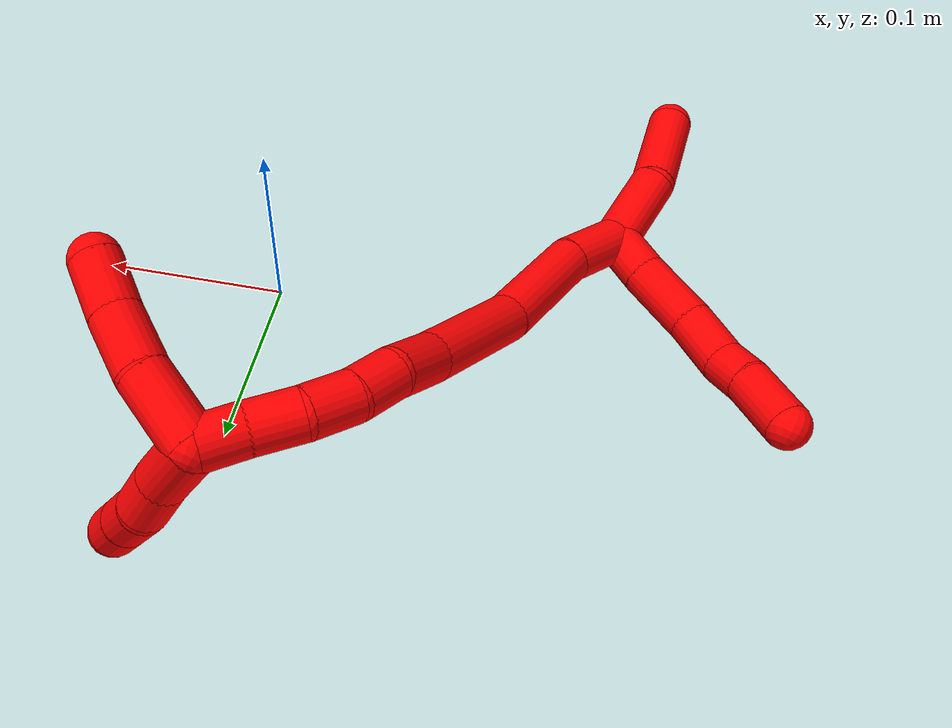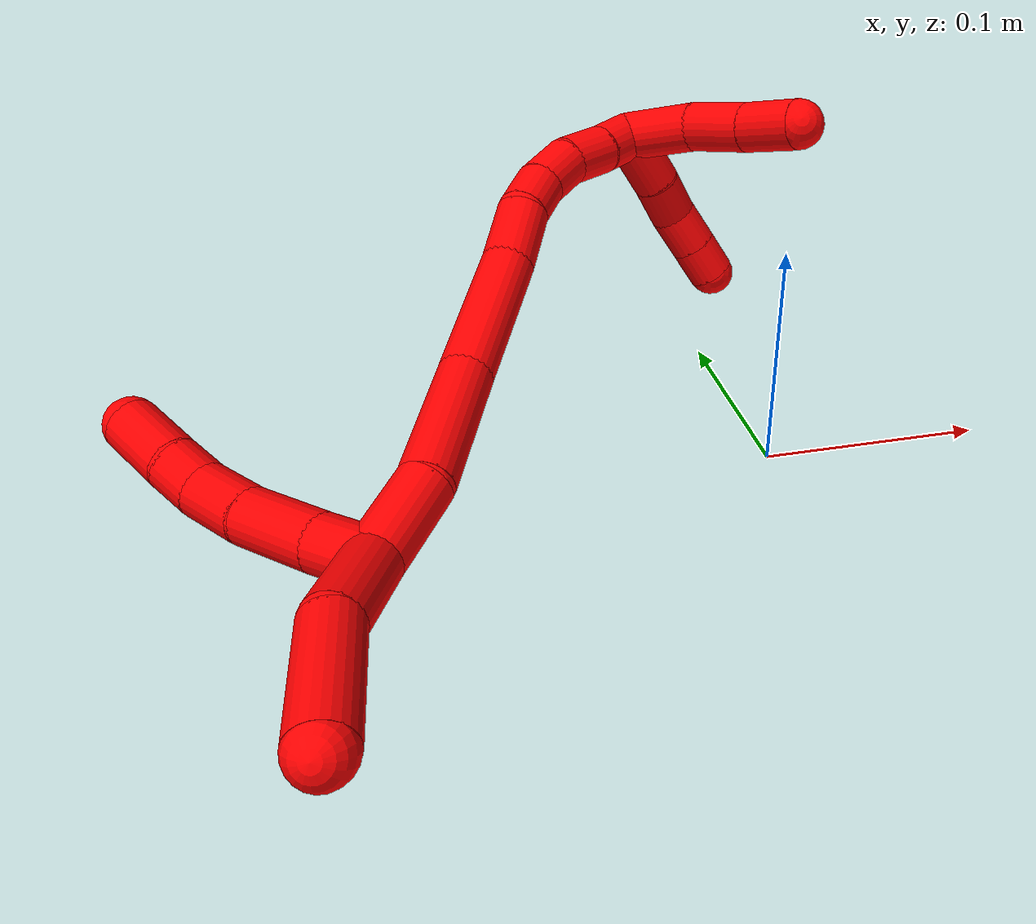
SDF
<sdf version="1.7">
 <world name="default">
  <model name="2">
   <static>0</static>
   <link name="2">
    <collision name="collision-cylinder-e_1_2_8">
     <pose>-0.011702 0.001691 -0.006817 -2.89848 -1.03025 2.71654</pose>
     <geometry><cylinder><radius>0.0125</radius><length>0.027296</length></cylinder></geometry>
     <surface>
      <friction><ode><mu>1.16</mu><mu2>1.16</mu2><slip1>0</slip1><slip2>0</slip2></ode></friction>
      <contact><ode><kp>1e+06</kp><kd>1</kd><max_vel>0</max_vel><min_depth>0.001</min_depth></ode></contact>
     </surface>
    </collision>
    <visual name="visual-cylinder-e_1_2_8">
     <pose>-0.011702 0.001691 -0.006817 -2.89848 -1.03025 2.71654</pose>
     <geometry><cylinder><radius>0.0125</radius><length>0.027296</length></cylinder></geometry>
     <material><ambient>1 0 0 1</ambient></material>
    </visual>
    <collision name="collision-cylinder-e_2_8_9">
     <pose>-0.040502 0.006845 -0.02221 -2.75772 -1.07491 2.5112</pose>
     <geometry><cylinder><radius>0.0125</radius><length>0.038878</length></cylinder></geometry>
     <surface>
      <friction><ode><mu>1.16</mu><mu2>1.16</mu2><slip1>0</slip1><slip2>0</slip2></ode></friction>
      <contact><ode><kp>1e+06</kp><kd>1</kd><max_vel>0</max_vel><min_depth>0.001</min_depth></ode></contact>
     </surface>
    </collision>
    <visual name="visual-cylinder-e_2_8_9">
     <pose>-0.040502 0.006845 -0.02221 -2.75772 -1.07491 2.5112</pose>
     <geometry><cylinder><radius>0.0125</radius><length>0.038878</length></cylinder></geometry>
     <material><ambient>1 0 0 1</ambient></material>
    </visual>
    <collision name="collision-cylinder-e_3_9_10">
     <pose>-0.070009 0.014368 -0.038458 -2.65505 -0.960464 2.25233</pose>
     <geometry><cylinder><radius>0.0125</radius><length>0.030287</length></cylinder></geometry>
     <surface>
      <friction><ode><mu>1.16</mu><mu2>1.16</mu2><slip1>0</slip1><slip2>0</slip2></ode></friction>
      <contact><ode><kp>1e+06</kp><kd>1</kd><max_vel>0</max_vel><min_depth>0.001</min_depth></ode></contact>
     </surface>
    </collision>
    <visual name="visual-cylinder-e_3_9_10">
     <pose>-0.070009 0.014368 -0.038458 -2.65505 -0.960464 2.25233</pose>
     <geometry><cylinder><radius>0.0125</radius><length>0.030287</length></cylinder></geometry>
     <material><ambient>1 0 0 1</ambient></material>
    </visual>
    <collision name="collision-cylinder-e_4_10_11">
     <pose>-0.090526 0.023325 -0.049443 -2.16534 -0.940587 1.52723</pose>
     <geometry><cylinder><radius>0.0125</radius><length>0.02007</length></cylinder></geometry>
     <surface>
      <friction><ode><mu>1.16</mu><mu2>1.16</mu2><slip1>0</slip1><slip2>0</slip2></ode></friction>
      <contact><ode><kp>1e+06</kp><kd>1</kd><max_vel>0</max_vel><min_depth>0.001</min_depth></ode></contact>
     </surface>
    </collision>
    <visual name="visual-cylinder-e_4_10_11">
     <pose>-0.090526 0.023325 -0.049443 -2.16534 -0.940587 1.52723</pose>
     <geometry><cylinder><radius>0.0125</radius><length>0.02007</length></cylinder></geometry>
     <material><ambient>1 0 0 1</ambient></material>
    </visual>
    <collision name="collision-cylinder-e_5_11_6">
     <pose>-0.111488 0.035646 -0.060482 -2.37629 -0.87597 1.7217</pose>
     <geometry><cylinder><radius>0.0125</radius><length>0.033468</length></cylinder></geometry>
     <surface>
      <friction><ode><mu>1.16</mu><mu2>1.16</mu2><slip1>0</slip1><slip2>0</slip2></ode></friction>
      <contact><ode><kp>1e+06</kp><kd>1</kd><max_vel>0</max_vel><min_depth>0.001</min_depth></ode></contact>
     </surface>
    </collision>
    <visual name="visual-cylinder-e_5_11_6">
     <pose>-0.111488 0.035646 -0.060482 -2.37629 -0.87597 1.7217</pose>
     <geometry><cylinder><radius>0.0125</radius><length>0.033468</length></cylinder></geometry>
     <material><ambient>1 0 0 1</ambient></material>
    </visual>
    <collision name="collision-cylinder-e_1_2_12">
     <pose>-0.001738 -0.007499 0.021275 0.338895 -0.076905 -0.013164</pose>
     <geometry><cylinder><radius>0.0125</radius><length>0.045249</length></cylinder></geometry>
     <surface>
      <friction><ode><mu>1.16</mu><mu2>1.16</mu2><slip1>0</slip1><slip2>0</slip2></ode></friction>
      <contact><ode><kp>1e+06</kp><kd>1</kd><max_vel>0</max_vel><min_depth>0.001</min_depth></ode></contact>
     </surface>
    </collision>
    <visual name="visual-cylinder-e_1_2_12">
     <pose>-0.001738 -0.007499 0.021275 0.338895 -0.076905 -0.013164</pose>
     <geometry><cylinder><radius>0.0125</radius><length>0.045249</length></cylinder></geometry>
     <material><ambient>1 0 0 1</ambient></material>
    </visual>
    <collision name="collision-cylinder-e_2_12_5">
     <pose>0.001753 -0.028732 0.065646 0.536439 0.192218 0.05298</pose>
     <geometry><cylinder><radius>0.0125</radius><length>0.054751</length></cylinder></geometry>
     <surface>
      <friction><ode><mu>1.16</mu><mu2>1.16</mu2><slip1>0</slip1><slip2>0</slip2></ode></friction>
      <contact><ode><kp>1e+06</kp><kd>1</kd><max_vel>0</max_vel><min_depth>0.001</min_depth></ode></contact>
     </surface>
    </collision>
    <visual name="visual-cylinder-e_2_12_5">
     <pose>0.001753 -0.028732 0.065646 0.536439 0.192218 0.05298</pose>
     <geometry><cylinder><radius>0.0125</radius><length>0.054751</length></cylinder></geometry>
     <material><ambient>1 0 0 1</ambient></material>
    </visual>
    <collision name="collision-cylinder-e_1_2_13">
     <pose>0.006765 0.013517 -0.013244 -2.346 0.343323 -0.782615</pose>
     <geometry><cylinder><radius>0.0125</radius><length>0.040193</length></cylinder></geometry>
     <surface>
      <friction><ode><mu>1.16</mu><mu2>1.16</mu2><slip1>0</slip1><slip2>0</slip2></ode></friction>
      <contact><ode><kp>1e+06</kp><kd>1</kd><max_vel>0</max_vel><min_depth>0.001</min_depth></ode></contact>
     </surface>
    </collision>
    <visual name="visual-cylinder-e_1_2_13">
     <pose>0.006765 0.013517 -0.013244 -2.346 0.343323 -0.782615</pose>
     <geometry><cylinder><radius>0.0125</radius><length>0.040193</length></cylinder></geometry>
     <material><ambient>1 0 0 1</ambient></material>
    </visual>
    <collision name="collision-cylinder-e_2_13_14">
     <pose>0.016855 0.048824 -0.05072 -2.40918 0.101679 -0.26382</pose>
     <geometry><cylinder><radius>0.0125</radius><length>0.065516</length></cylinder></geometry>
     <surface>
      <friction><ode><mu>1.16</mu><mu2>1.16</mu2><slip1>0</slip1><slip2>0</slip2></ode></friction>
      <contact><ode><kp>1e+06</kp><kd>1</kd><max_vel>0</max_vel><min_depth>0.001</min_depth></ode></contact>
     </surface>
    </collision>
    <visual name="visual-cylinder-e_2_13_14">
     <pose>0.016855 0.048824 -0.05072 -2.40918 0.101679 -0.26382</pose>
     <geometry><cylinder><radius>0.0125</radius><length>0.065516</length></cylinder></geometry>
     <material><ambient>1 0 0 1</ambient></material>
    </visual>
    <collision name="collision-cylinder-e_3_14_15">
     <pose>0.026042 0.097023 -0.094361 -2.20463 0.176987 -0.347126</pose>
     <geometry><cylinder><radius>0.0125</radius><length>0.066587</length></cylinder></geometry>
     <surface>
      <friction><ode><mu>1.16</mu><mu2>1.16</mu2><slip1>0</slip1><slip2>0</slip2></ode></friction>
      <contact><ode><kp>1e+06</kp><kd>1</kd><max_vel>0</max_vel><min_depth>0.001</min_depth></ode></contact>
     </surface>
    </collision>
    <visual name="visual-cylinder-e_3_14_15">
     <pose>0.026042 0.097023 -0.094361 -2.20463 0.176987 -0.347126</pose>
     <geometry><cylinder><radius>0.0125</radius><length>0.066587</length></cylinder></geometry>
     <material><ambient>1 0 0 1</ambient></material>
    </visual>
    <collision name="collision-cylinder-e_4_15_16">
     <pose>0.034148 0.136845 -0.121315 -2.08311 0.14484 -0.246807</pose>
     <geometry><cylinder><radius>0.0125</radius><length>0.031107</length></cylinder></geometry>
     <surface>
      <friction><ode><mu>1.16</mu><mu2>1.16</mu2><slip1>0</slip1><slip2>0</slip2></ode></friction>
      <contact><ode><kp>1e+06</kp><kd>1</kd><max_vel>0</max_vel><min_depth>0.001</min_depth></ode></contact>
     </surface>
    </collision>
    <visual name="visual-cylinder-e_4_15_16">
     <pose>0.034148 0.136845 -0.121315 -2.08311 0.14484 -0.246807</pose>
     <geometry><cylinder><radius>0.0125</radius><length>0.031107</length></cylinder></geometry>
     <material><ambient>1 0 0 1</ambient></material>
    </visual>
    <collision name="collision-cylinder-e_5_16_17">
     <pose>0.039423 0.158351 -0.137137 -2.36756 0.255988 -0.611715</pose>
     <geometry><cylinder><radius>0.0125</radius><length>0.023931</length></cylinder></geometry>
     <surface>
      <friction><ode><mu>1.16</mu><mu2>1.16</mu2><slip1>0</slip1><slip2>0</slip2></ode></friction>
      <contact><ode><kp>1e+06</kp><kd>1</kd><max_vel>0</max_vel><min_depth>0.001</min_depth></ode></contact>
     </surface>
    </collision>
    <visual name="visual-cylinder-e_5_16_17">
     <pose>0.039423 0.158351 -0.137137 -2.36756 0.255988 -0.611715</pose>
     <geometry><cylinder><radius>0.0125</radius><length>0.023931</length></cylinder></geometry>
     <material><ambient>1 0 0 1</ambient></material>
    </visual>
    <collision name="collision-cylinder-e_6_17_18">
     <pose>0.048279 0.174097 -0.153442 -2.37996 0.483675 -1.10436</pose>
     <geometry><cylinder><radius>0.0125</radius><length>0.025059</length></cylinder></geometry>
     <surface>
      <friction><ode><mu>1.16</mu><mu2>1.16</mu2><slip1>0</slip1><slip2>0</slip2></ode></friction>
      <contact><ode><kp>1e+06</kp><kd>1</kd><max_vel>0</max_vel><min_depth>0.001</min_depth></ode></contact>
     </surface>
    </collision>
    <visual name="visual-cylinder-e_6_17_18">
     <pose>0.048279 0.174097 -0.153442 -2.37996 0.483675 -1.10436</pose>
     <geometry><cylinder><radius>0.0125</radius><length>0.025059</length></cylinder></geometry>
     <material><ambient>1 0 0 1</ambient></material>
    </visual>
    <collision name="collision-cylinder-e_7_18_19">
     <pose>0.062404 0.186703 -0.169388 -2.5828 0.726423 -1.84838</pose>
     <geometry><cylinder><radius>0.0125</radius><length>0.024986</length></cylinder></geometry>
     <surface>
      <friction><ode><mu>1.16</mu><mu2>1.16</mu2><slip1>0</slip1><slip2>0</slip2></ode></friction>
      <contact><ode><kp>1e+06</kp><kd>1</kd><max_vel>0</max_vel><min_depth>0.001</min_depth></ode></contact>
     </surface>
    </collision>
    <visual name="visual-cylinder-e_7_18_19">
     <pose>0.062404 0.186703 -0.169388 -2.5828 0.726423 -1.84838</pose>
     <geometry><cylinder><radius>0.0125</radius><length>0.024986</length></cylinder></geometry>
     <material><ambient>1 0 0 1</ambient></material>
    </visual>
    <collision name="collision-cylinder-e_8_19_1">
     <pose>0.077456 0.196899 -0.184711 -2.5253 0.639926 -1.61101</pose>
     <geometry><cylinder><radius>0.0125</radius><length>0.022622</length></cylinder></geometry>
     <surface>
      <friction><ode><mu>1.16</mu><mu2>1.16</mu2><slip1>0</slip1><slip2>0</slip2></ode></friction>
      <contact><ode><kp>1e+06</kp><kd>1</kd><max_vel>0</max_vel><min_depth>0.001</min_depth></ode></contact>
     </surface>
    </collision>
    <visual name="visual-cylinder-e_8_19_1">
     <pose>0.077456 0.196899 -0.184711 -2.5253 0.639926 -1.61101</pose>
     <geometry><cylinder><radius>0.0125</radius><length>0.022622</length></cylinder></geometry>
     <material><ambient>1 0 0 1</ambient></material>
    </visual>
    <collision name="collision-cylinder-e_1_1_20">
     <pose>0.092101 0.191994 -0.202017 2.34386 0.507822 1.10384</pose>
     <geometry><cylinder><radius>0.0125</radius><length>0.032455</length></cylinder></geometry>
     <surface>
      <friction><ode><mu>1.16</mu><mu2>1.16</mu2><slip1>0</slip1><slip2>0</slip2></ode></friction>
      <contact><ode><kp>1e+06</kp><kd>1</kd><max_vel>0</max_vel><min_depth>0.001</min_depth></ode></contact>
     </surface>
    </collision>
    <visual name="visual-cylinder-e_1_1_20">
     <pose>0.092101 0.191994 -0.202017 2.34386 0.507822 1.10384</pose>
     <geometry><cylinder><radius>0.0125</radius><length>0.032455</length></cylinder></geometry>
     <material><ambient>1 0 0 1</ambient></material>
    </visual>
    <collision name="collision-cylinder-e_2_20_21">
     <pose>0.104938 0.17453 -0.220055 2.40934 0.424549 1.02419</pose>
     <geometry><cylinder><radius>0.0125</radius><length>0.024014</length></cylinder></geometry>
     <surface>
      <friction><ode><mu>1.16</mu><mu2>1.16</mu2><slip1>0</slip1><slip2>0</slip2></ode></friction>
      <contact><ode><kp>1e+06</kp><kd>1</kd><max_vel>0</max_vel><min_depth>0.001</min_depth></ode></contact>
     </surface>
    </collision>
    <visual name="visual-cylinder-e_2_20_21">
     <pose>0.104938 0.17453 -0.220055 2.40934 0.424549 1.02419</pose>
     <geometry><cylinder><radius>0.0125</radius><length>0.024014</length></cylinder></geometry>
     <material><ambient>1 0 0 1</ambient></material>
    </visual>
    <collision name="collision-cylinder-e_3_21_22">
     <pose>0.116135 0.159185 -0.233433 2.14908 0.577744 1.00395</pose>
     <geometry><cylinder><radius>0.0125</radius><length>0.022895</length></cylinder></geometry>
     <surface>
      <friction><ode><mu>1.16</mu><mu2>1.16</mu2><slip1>0</slip1><slip2>0</slip2></ode></friction>
      <contact><ode><kp>1e+06</kp><kd>1</kd><max_vel>0</max_vel><min_depth>0.001</min_depth></ode></contact>
     </surface>
    </collision>
    <visual name="visual-cylinder-e_3_21_22">
     <pose>0.116135 0.159185 -0.233433 2.14908 0.577744 1.00395</pose>
     <geometry><cylinder><radius>0.0125</radius><length>0.022895</length></cylinder></geometry>
     <material><ambient>1 0 0 1</ambient></material>
    </visual>
    <collision name="collision-cylinder-e_4_22_4">
     <pose>0.128012 0.143802 -0.243231 2.12559 0.576577 0.978861</pose>
     <geometry><cylinder><radius>0.0125</radius><length>0.020636</length></cylinder></geometry>
     <surface>
      <friction><ode><mu>1.16</mu><mu2>1.16</mu2><slip1>0</slip1><slip2>0</slip2></ode></friction>
      <contact><ode><kp>1e+06</kp><kd>1</kd><max_vel>0</max_vel><min_depth>0.001</min_depth></ode></contact>
     </surface>
    </collision>
    <visual name="visual-cylinder-e_4_22_4">
     <pose>0.128012 0.143802 -0.243231 2.12559 0.576577 0.978861</pose>
     <geometry><cylinder><radius>0.0125</radius><length>0.020636</length></cylinder></geometry>
     <material><ambient>1 0 0 1</ambient></material>
    </visual>
    <collision name="collision-cylinder-e_1_1_23">
     <pose>0.101415 0.203148 -0.183108 -0.111019 1.08597 -0.067043</pose>
     <geometry><cylinder><radius>0.0125</radius><length>0.038891</length></cylinder></geometry>
     <surface>
      <friction><ode><mu>1.16</mu><mu2>1.16</mu2><slip1>0</slip1><slip2>0</slip2></ode></friction>
      <contact><ode><kp>1e+06</kp><kd>1</kd><max_vel>0</max_vel><min_depth>0.001</min_depth></ode></contact>
     </surface>
    </collision>
    <visual name="visual-cylinder-e_1_1_23">
     <pose>0.101415 0.203148 -0.183108 -0.111019 1.08597 -0.067043</pose>
     <geometry><cylinder><radius>0.0125</radius><length>0.038891</length></cylinder></geometry>
     <material><ambient>1 0 0 1</ambient></material>
    </visual>
    <collision name="collision-cylinder-e_2_23_24">
     <pose>0.131646 0.202417 -0.165447 0.197891 0.975301 0.105203</pose>
     <geometry><cylinder><radius>0.0125</radius><length>0.03147</length></cylinder></geometry>
     <surface>
      <friction><ode><mu>1.16</mu><mu2>1.16</mu2><slip1>0</slip1><slip2>0</slip2></ode></friction>
      <contact><ode><kp>1e+06</kp><kd>1</kd><max_vel>0</max_vel><min_depth>0.001</min_depth></ode></contact>
     </surface>
    </collision>
    <visual name="visual-cylinder-e_2_23_24">
     <pose>0.131646 0.202417 -0.165447 0.197891 0.975301 0.105203</pose>
     <geometry><cylinder><radius>0.0125</radius><length>0.03147</length></cylinder></geometry>
     <material><ambient>1 0 0 1</ambient></material>
    </visual>
    <collision name="collision-cylinder-e_3_24_3">
     <pose>0.156211 0.199681 -0.147549 0.107809 0.892522 0.05162</pose>
     <geometry><cylinder><radius>0.0125</radius><length>0.029639</length></cylinder></geometry>
     <surface>
      <friction><ode><mu>1.16</mu><mu2>1.16</mu2><slip1>0</slip1><slip2>0</slip2></ode></friction>
      <contact><ode><kp>1e+06</kp><kd>1</kd><max_vel>0</max_vel><min_depth>0.001</min_depth></ode></contact>
     </surface>
    </collision>
    <visual name="visual-cylinder-e_3_24_3">
     <pose>0.156211 0.199681 -0.147549 0.107809 0.892522 0.05162</pose>
     <geometry><cylinder><radius>0.0125</radius><length>0.029639</length></cylinder></geometry>
     <material><ambient>1 0 0 1</ambient></material>
    </visual>
    <collision name="collision-sphere-3">
     <pose>0.167751 0.19868 -0.138304 0 -0 0</pose>
     <geometry><sphere><radius>0.0125</radius></sphere></geometry>
     <surface>
      <friction><ode><mu>1.16</mu><mu2>1.16</mu2><slip1>0</slip1><slip2>0</slip2></ode></friction>
      <contact><ode><kp>1e+06</kp><kd>1</kd><max_vel>0</max_vel><min_depth>0.001</min_depth></ode></contact>
     </surface>
    </collision>
    <visual name="visual-sphere-3">
     <pose>0.167751 0.19868 -0.138304 0 -0 0</pose>
     <geometry><sphere><radius>0.0125</radius></sphere></geometry>
     <material><ambient>1 0 0 1</ambient></material>
    </visual>
    <collision name="collision-sphere-24">
     <pose>0.144672 0.200681 -0.156793 0 -0 0</pose>
     <geometry><sphere><radius>0.0125</radius></sphere></geometry>
     <surface>
      <friction><ode><mu>1.16</mu><mu2>1.16</mu2><slip1>0</slip1><slip2>0</slip2></ode></friction>
      <contact><ode><kp>1e+06</kp><kd>1</kd><max_vel>0</max_vel><min_depth>0.001</min_depth></ode></contact>
     </surface>
    </collision>
    <visual name="visual-sphere-24">
     <pose>0.144672 0.200681 -0.156793 0 -0 0</pose>
     <geometry><sphere><radius>0.0125</radius></sphere></geometry>
     <material><ambient>1 0 0 1</ambient></material>
    </visual>
    <collision name="collision-sphere-23">
     <pose>0.118619 0.204152 -0.174101 0 -0 0</pose>
     <geometry><sphere><radius>0.0125</radius></sphere></geometry>
     <surface>
      <friction><ode><mu>1.16</mu><mu2>1.16</mu2><slip1>0</slip1><slip2>0</slip2></ode></friction>
      <contact><ode><kp>1e+06</kp><kd>1</kd><max_vel>0</max_vel><min_depth>0.001</min_depth></ode></contact>
     </surface>
    </collision>
    <visual name="visual-sphere-23">
     <pose>0.118619 0.204152 -0.174101 0 -0 0</pose>
     <geometry><sphere><radius>0.0125</radius></sphere></geometry>
     <material><ambient>1 0 0 1</ambient></material>
    </visual>
    <collision name="collision-sphere-4">
     <pose>0.133637 0.13645 -0.247788 0 -0 0</pose>
     <geometry><sphere><radius>0.0125</radius></sphere></geometry>
     <surface>
      <friction><ode><mu>1.16</mu><mu2>1.16</mu2><slip1>0</slip1><slip2>0</slip2></ode></friction>
      <contact><ode><kp>1e+06</kp><kd>1</kd><max_vel>0</max_vel><min_depth>0.001</min_depth></ode></contact>
     </surface>
    </collision>
    <visual name="visual-sphere-4">
     <pose>0.133637 0.13645 -0.247788 0 -0 0</pose>
     <geometry><sphere><radius>0.0125</radius></sphere></geometry>
     <material><ambient>1 0 0 1</ambient></material>
    </visual>
    <collision name="collision-sphere-22">
     <pose>0.122387 0.151155 -0.238675 0 -0 0</pose>
     <geometry><sphere><radius>0.0125</radius></sphere></geometry>
     <surface>
      <friction><ode><mu>1.16</mu><mu2>1.16</mu2><slip1>0</slip1><slip2>0</slip2></ode></friction>
      <contact><ode><kp>1e+06</kp><kd>1</kd><max_vel>0</max_vel><min_depth>0.001</min_depth></ode></contact>
     </surface>
    </collision>
    <visual name="visual-sphere-22">
     <pose>0.122387 0.151155 -0.238675 0 -0 0</pose>
     <geometry><sphere><radius>0.0125</radius></sphere></geometry>
     <material><ambient>1 0 0 1</ambient></material>
    </visual>
    <collision name="collision-sphere-21">
     <pose>0.109883 0.167216 -0.228192 0 -0 0</pose>
     <geometry><sphere><radius>0.0125</radius></sphere></geometry>
     <surface>
      <friction><ode><mu>1.16</mu><mu2>1.16</mu2><slip1>0</slip1><slip2>0</slip2></ode></friction>
      <contact><ode><kp>1e+06</kp><kd>1</kd><max_vel>0</max_vel><min_depth>0.001</min_depth></ode></contact>
     </surface>
    </collision>
    <visual name="visual-sphere-21">
     <pose>0.109883 0.167216 -0.228192 0 -0 0</pose>
     <geometry><sphere><radius>0.0125</radius></sphere></geometry>
     <material><ambient>1 0 0 1</ambient></material>
    </visual>
    <collision name="collision-sphere-20">
     <pose>0.099992 0.181845 -0.211919 0 -0 0</pose>
     <geometry><sphere><radius>0.0125</radius></sphere></geometry>
     <surface>
      <friction><ode><mu>1.16</mu><mu2>1.16</mu2><slip1>0</slip1><slip2>0</slip2></ode></friction>
      <contact><ode><kp>1e+06</kp><kd>1</kd><max_vel>0</max_vel><min_depth>0.001</min_depth></ode></contact>
     </surface>
    </collision>
    <visual name="visual-sphere-20">
     <pose>0.099992 0.181845 -0.211919 0 -0 0</pose>
     <geometry><sphere><radius>0.0125</radius></sphere></geometry>
     <material><ambient>1 0 0 1</ambient></material>
    </visual>
    <collision name="collision-sphere-6">
     <pose>-0.124343 0.043068 -0.068209 0 -0 0</pose>
     <geometry><sphere><radius>0.0125</radius></sphere></geometry>
     <surface>
      <friction><ode><mu>1.16</mu><mu2>1.16</mu2><slip1>0</slip1><slip2>0</slip2></ode></friction>
      <contact><ode><kp>1e+06</kp><kd>1</kd><max_vel>0</max_vel><min_depth>0.001</min_depth></ode></contact>
     </surface>
    </collision>
    <visual name="visual-sphere-6">
     <pose>-0.124343 0.043068 -0.068209 0 -0 0</pose>
     <geometry><sphere><radius>0.0125</radius></sphere></geometry>
     <material><ambient>1 0 0 1</ambient></material>
    </visual>
    <collision name="collision-sphere-11">
     <pose>-0.098634 0.028224 -0.052756 0 -0 0</pose>
     <geometry><sphere><radius>0.0125</radius></sphere></geometry>
     <surface>
      <friction><ode><mu>1.16</mu><mu2>1.16</mu2><slip1>0</slip1><slip2>0</slip2></ode></friction>
      <contact><ode><kp>1e+06</kp><kd>1</kd><max_vel>0</max_vel><min_depth>0.001</min_depth></ode></contact>
     </surface>
    </collision>
    <visual name="visual-sphere-11">
     <pose>-0.098634 0.028224 -0.052756 0 -0 0</pose>
     <geometry><sphere><radius>0.0125</radius></sphere></geometry>
     <material><ambient>1 0 0 1</ambient></material>
    </visual>
    <collision name="collision-sphere-10">
     <pose>-0.082419 0.018426 -0.046131 0 -0 0</pose>
     <geometry><sphere><radius>0.0125</radius></sphere></geometry>
     <surface>
      <friction><ode><mu>1.16</mu><mu2>1.16</mu2><slip1>0</slip1><slip2>0</slip2></ode></friction>
      <contact><ode><kp>1e+06</kp><kd>1</kd><max_vel>0</max_vel><min_depth>0.001</min_depth></ode></contact>
     </surface>
    </collision>
    <visual name="visual-sphere-10">
     <pose>-0.082419 0.018426 -0.046131 0 -0 0</pose>
     <geometry><sphere><radius>0.0125</radius></sphere></geometry>
     <material><ambient>1 0 0 1</ambient></material>
    </visual>
    <collision name="collision-sphere-9">
     <pose>-0.0576 0.010309 -0.030786 0 -0 0</pose>
     <geometry><sphere><radius>0.0125</radius></sphere></geometry>
     <surface>
      <friction><ode><mu>1.16</mu><mu2>1.16</mu2><slip1>0</slip1><slip2>0</slip2></ode></friction>
      <contact><ode><kp>1e+06</kp><kd>1</kd><max_vel>0</max_vel><min_depth>0.001</min_depth></ode></contact>
     </surface>
    </collision>
    <visual name="visual-sphere-9">
     <pose>-0.0576 0.010309 -0.030786 0 -0 0</pose>
     <geometry><sphere><radius>0.0125</radius></sphere></geometry>
     <material><ambient>1 0 0 1</ambient></material>
    </visual>
    <collision name="collision-sphere-2">
     <geometry><sphere><radius>0.0125</radius></sphere></geometry>
     <surface>
      <friction><ode><mu>1.16</mu><mu2>1.16</mu2><slip1>0</slip1><slip2>0</slip2></ode></friction>
      <contact><ode><kp>1e+06</kp><kd>1</kd><max_vel>0</max_vel><min_depth>0.001</min_depth></ode></contact>
     </surface>
    </collision>
    <visual name="visual-sphere-2">
     <geometry><sphere><radius>0.0125</radius></sphere></geometry>
     <material><ambient>1 0 0 1</ambient></material>
    </visual>
    <collision name="collision-sphere-19">
     <pose>0.070701 0.191655 -0.177307 0 -0 0</pose>
     <geometry><sphere><radius>0.0125</radius></sphere></geometry>
     <surface>
      <friction><ode><mu>1.16</mu><mu2>1.16</mu2><slip1>0</slip1><slip2>0</slip2></ode></friction>
      <contact><ode><kp>1e+06</kp><kd>1</kd><max_vel>0</max_vel><min_depth>0.001</min_depth></ode></contact>
     </surface>
    </collision>
    <visual name="visual-sphere-19">
     <pose>0.070701 0.191655 -0.177307 0 -0 0</pose>
     <geometry><sphere><radius>0.0125</radius></sphere></geometry>
     <material><ambient>1 0 0 1</ambient></material>
    </visual>
    <collision name="collision-sphere-8">
     <pose>-0.023405 0.003381 -0.013634 0 -0 0</pose>
     <geometry><sphere><radius>0.0125</radius></sphere></geometry>
     <surface>
      <friction><ode><mu>1.16</mu><mu2>1.16</mu2><slip1>0</slip1><slip2>0</slip2></ode></friction>
      <contact><ode><kp>1e+06</kp><kd>1</kd><max_vel>0</max_vel><min_depth>0.001</min_depth></ode></contact>
     </surface>
    </collision>
    <visual name="visual-sphere-8">
     <pose>-0.023405 0.003381 -0.013634 0 -0 0</pose>
     <geometry><sphere><radius>0.0125</radius></sphere></geometry>
     <material><ambient>1 0 0 1</ambient></material>
    </visual>
    <collision name="collision-sphere-12">
     <pose>-0.003476 -0.014998 0.04255 0 -0 0</pose>
     <geometry><sphere><radius>0.0125</radius></sphere></geometry>
     <surface>
      <friction><ode><mu>1.16</mu><mu2>1.16</mu2><slip1>0</slip1><slip2>0</slip2></ode></friction>
      <contact><ode><kp>1e+06</kp><kd>1</kd><max_vel>0</max_vel><min_depth>0.001</min_depth></ode></contact>
     </surface>
    </collision>
    <visual name="visual-sphere-12">
     <pose>-0.003476 -0.014998 0.04255 0 -0 0</pose>
     <geometry><sphere><radius>0.0125</radius></sphere></geometry>
     <material><ambient>1 0 0 1</ambient></material>
    </visual>
    <collision name="collision-sphere-5">
     <pose>0.006983 -0.042465 0.088743 0 -0 0</pose>
     <geometry><sphere><radius>0.0125</radius></sphere></geometry>
     <surface>
      <friction><ode><mu>1.16</mu><mu2>1.16</mu2><slip1>0</slip1><slip2>0</slip2></ode></friction>
      <contact><ode><kp>1e+06</kp><kd>1</kd><max_vel>0</max_vel><min_depth>0.001</min_depth></ode></contact>
     </surface>
    </collision>
    <visual name="visual-sphere-5">
     <pose>0.006983 -0.042465 0.088743 0 -0 0</pose>
     <geometry><sphere><radius>0.0125</radius></sphere></geometry>
     <material><ambient>1 0 0 1</ambient></material>
    </visual>
    <collision name="collision-sphere-13">
     <pose>0.01353 0.027034 -0.026488 0 -0 0</pose>
     <geometry><sphere><radius>0.0125</radius></sphere></geometry>
     <surface>
      <friction><ode><mu>1.16</mu><mu2>1.16</mu2><slip1>0</slip1><slip2>0</slip2></ode></friction>
      <contact><ode><kp>1e+06</kp><kd>1</kd><max_vel>0</max_vel><min_depth>0.001</min_depth></ode></contact>
     </surface>
    </collision>
    <visual name="visual-sphere-13">
     <pose>0.01353 0.027034 -0.026488 0 -0 0</pose>
     <geometry><sphere><radius>0.0125</radius></sphere></geometry>
     <material><ambient>1 0 0 1</ambient></material>
    </visual>
    <collision name="collision-sphere-14">
     <pose>0.02018 0.070615 -0.074951 0 -0 0</pose>
     <geometry><sphere><radius>0.0125</radius></sphere></geometry>
     <surface>
      <friction><ode><mu>1.16</mu><mu2>1.16</mu2><slip1>0</slip1><slip2>0</slip2></ode></friction>
      <contact><ode><kp>1e+06</kp><kd>1</kd><max_vel>0</max_vel><min_depth>0.001</min_depth></ode></contact>
     </surface>
    </collision>
    <visual name="visual-sphere-14">
     <pose>0.02018 0.070615 -0.074951 0 -0 0</pose>
     <geometry><sphere><radius>0.0125</radius></sphere></geometry>
     <material><ambient>1 0 0 1</ambient></material>
    </visual>
    <collision name="collision-sphere-15">
     <pose>0.031903 0.12343 -0.113771 0 -0 0</pose>
     <geometry><sphere><radius>0.0125</radius></sphere></geometry>
     <surface>
      <friction><ode><mu>1.16</mu><mu2>1.16</mu2><slip1>0</slip1><slip2>0</slip2></ode></friction>
      <contact><ode><kp>1e+06</kp><kd>1</kd><max_vel>0</max_vel><min_depth>0.001</min_depth></ode></contact>
     </surface>
    </collision>
    <visual name="visual-sphere-15">
     <pose>0.031903 0.12343 -0.113771 0 -0 0</pose>
     <geometry><sphere><radius>0.0125</radius></sphere></geometry>
     <material><ambient>1 0 0 1</ambient></material>
    </visual>
    <collision name="collision-sphere-16">
     <pose>0.036393 0.15026 -0.128859 0 -0 0</pose>
     <geometry><sphere><radius>0.0125</radius></sphere></geometry>
     <surface>
      <friction><ode><mu>1.16</mu><mu2>1.16</mu2><slip1>0</slip1><slip2>0</slip2></ode></friction>
      <contact><ode><kp>1e+06</kp><kd>1</kd><max_vel>0</max_vel><min_depth>0.001</min_depth></ode></contact>
     </surface>
    </collision>
    <visual name="visual-sphere-16">
     <pose>0.036393 0.15026 -0.128859 0 -0 0</pose>
     <geometry><sphere><radius>0.0125</radius></sphere></geometry>
     <material><ambient>1 0 0 1</ambient></material>
    </visual>
    <collision name="collision-sphere-17">
     <pose>0.042452 0.166443 -0.145414 0 -0 0</pose>
     <geometry><sphere><radius>0.0125</radius></sphere></geometry>
     <surface>
      <friction><ode><mu>1.16</mu><mu2>1.16</mu2><slip1>0</slip1><slip2>0</slip2></ode></friction>
      <contact><ode><kp>1e+06</kp><kd>1</kd><max_vel>0</max_vel><min_depth>0.001</min_depth></ode></contact>
     </surface>
    </collision>
    <visual name="visual-sphere-17">
     <pose>0.042452 0.166443 -0.145414 0 -0 0</pose>
     <geometry><sphere><radius>0.0125</radius></sphere></geometry>
     <material><ambient>1 0 0 1</ambient></material>
    </visual>
    <collision name="collision-sphere-18">
     <pose>0.054106 0.181752 -0.161469 0 -0 0</pose>
     <geometry><sphere><radius>0.0125</radius></sphere></geometry>
     <surface>
      <friction><ode><mu>1.16</mu><mu2>1.16</mu2><slip1>0</slip1><slip2>0</slip2></ode></friction>
      <contact><ode><kp>1e+06</kp><kd>1</kd><max_vel>0</max_vel><min_depth>0.001</min_depth></ode></contact>
     </surface>
    </collision>
    <visual name="visual-sphere-18">
     <pose>0.054106 0.181752 -0.161469 0 -0 0</pose>
     <geometry><sphere><radius>0.0125</radius></sphere></geometry>
     <material><ambient>1 0 0 1</ambient></material>
    </visual>
    <collision name="collision-sphere-1">
     <pose>0.08421 0.202144 -0.192115 0 -0 0</pose>
     <geometry><sphere><radius>0.0125</radius></sphere></geometry>
     <surface>
      <friction><ode><mu>1.16</mu><mu2>1.16</mu2><slip1>0</slip1><slip2>0</slip2></ode></friction>
      <contact><ode><kp>1e+06</kp><kd>1</kd><max_vel>0</max_vel><min_depth>0.001</min_depth></ode></contact>
     </surface>
    </collision>
    <visual name="visual-sphere-1">
     <pose>0.08421 0.202144 -0.192115 0 -0 0</pose>
     <geometry><sphere><radius>0.0125</radius></sphere></geometry>
     <material><ambient>1 0 0 1</ambient></material>
    </visual>
    <inertial>
     <pose>0.031491 0.0926 -0.09204 0 -0 0</pose>
     <mass>0.75</mass>
     <inertia><ixx>8.7e-05</ixx><ixy>0</ixy><ixz>0</ixz><iyy>1.5e-05</iyy><iyz>0</iyz><izz>-7e-05</izz></inertia>
    </inertial>
   </link>
   <pose>-0.18029 -0.061247 0.020352 1.03768 0.003508 -0.294346</pose>
  </model>
 </world>
</sdf>
